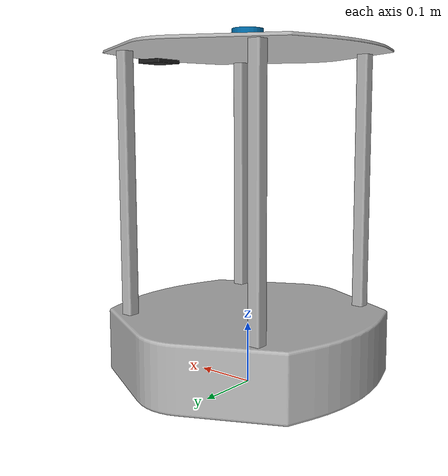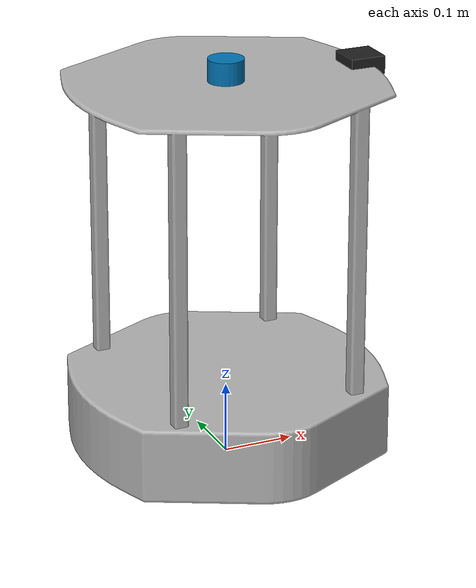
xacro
<?xml version="1.0" ?>
<robot name="ancro" xmlns:xacro="http://www.ros.org/wiki/xacro">

<xacro:include filename="$(find ancro_description)/urdf/materials.xacro" />
<xacro:include filename="$(find ancro_description)/urdf/ancro.trans" />
<xacro:include filename="$(find ancro_description)/urdf/ancro.gazebo.xacro" />

<link name="base_footprint"/>

<joint name="base_joint" type="fixed">
    <parent link="base_footprint"/>
    <child link="base_link"/>
    <origin xyz="0.0 0.0 0.010" rpy="0 0 -1.57"/>
  </joint>

<link name="base_link">
  <inertial>
    <origin rpy="0 0 0" xyz="2.360311031961313e-06 3.348856490864264e-10 0.1823972044211784"/>
    <mass value="10.987205181570816"/>
    <inertia ixx="0.580104" ixy="3e-05" ixz="4e-06" iyy="0.584543" iyz="0.0" izz="0.309516"/>
  </inertial>
  <visual>
    <origin rpy="0 0 0" xyz="0 0 0"/>
    <geometry>
      <mesh filename="package://ancro_description/meshes/base_link.stl" scale="0.001 0.001 0.001"/>
    </geometry>
    <material name="silver"/>
  </visual>
  <collision>
    <origin rpy="0 0 0" xyz="0 0 0"/>
    <geometry>
      <mesh filename="package://ancro_description/meshes/base_link.stl" scale="0.001 0.001 0.001"/>
    </geometry>
  </collision>
</link>

<link name="right_wheel_1">
  <inertial>
    <origin rpy="0 0 0" xyz="0.00611814035603947 -3.5827692354705325e-18 -1.3642559304472002e-13"/>
    <mass value="0.22634609582436735"/>
    <inertia ixx="0.000272" ixy="-0.0" ixz="0.0" iyy="0.000152" iyz="-0.0" izz="0.000152"/>
  </inertial>
  <visual>
    <origin rpy="0 0 0" xyz="-0.17 -0.0 -0.05"/>
    <geometry>
      <mesh filename="package://ancro_description/meshes/right_wheel_1.stl" scale="0.001 0.001 0.001"/>
    </geometry>
    <material name="silver"/>
  </visual>
  <collision>
    <origin rpy="0 0 0" xyz="-0.17 -0.0 -0.05"/>
    <geometry>
      <mesh filename="package://ancro_description/meshes/right_wheel_1.stl" scale="0.001 0.001 0.001"/>
    </geometry>
  </collision>
</link>

<link name="left_wheel_1">
  <inertial>
    <origin rpy="0 0 0" xyz="-0.006118140356039359 3.5827692354705325e-18 -1.3665457654354896e-13"/>
    <mass value="0.22634609582436735"/>
    <inertia ixx="0.000272" ixy="-0.0" ixz="-0.0" iyy="0.000152" iyz="-0.0" izz="0.000152"/>
  </inertial>
  <visual>
    <origin rpy="0 0 0" xyz="0.17 -0.0 -0.05"/>
    <geometry>
      <mesh filename="package://ancro_description/meshes/left_wheel_1.stl" scale="0.001 0.001 0.001"/>
    </geometry>
    <material name="silver"/>
  </visual>
  <collision>
    <origin rpy="0 0 0" xyz="0.17 -0.0 -0.05"/>
    <geometry>
      <mesh filename="package://ancro_description/meshes/left_wheel_1.stl" scale="0.001 0.001 0.001"/>
    </geometry>
  </collision>
</link>

<link name="lidar_1">
    <visual>
      <origin xyz="0 0 0.0" rpy="0 0 0"/>
      <geometry>
        <cylinder length="0.0315" radius="0.025"/>
      </geometry>
    </visual>

    <collision>
      <origin xyz="0.015 0 -0.0065" rpy="0 0 0"/>
      <geometry>
        <cylinder length="0.03" radius="0.025"/>
      </geometry>
    </collision>

    <inertial>
      <mass value="0.114" />
      <origin xyz="0 0 0" />
      <inertia ixx="0.001" ixy="0.0" ixz="0.0"
               iyy="0.001" iyz="0.0"
               izz="0.001" />
    </inertial>
  </link>

<link name="camera">
  <inertial>
    <origin xyz="0.0 0.0 0.0" rpy="0.0 0.0 0.0"/>
    <mass value="0.0"/>
    <inertia ixx="0.0" ixy="0.0" ixz="0.0" iyy="0.0" iyz="0.0" izz="0.0"/>
  </inertial>
  <visual name="">
    <origin xyz="0.0 0.0 0.0" rpy="0.0 0.0 0.0"/>
    <geometry>
      <box size="0.05 0.05 0.025"/>
    </geometry>
  </visual>
  <collision>
    <origin xyz="0.0 0.0 0.0" rpy="0.0 0.0 0.0"/>
    <geometry>
      <box size="0.0 0.0 0.0"/>
    </geometry>
  </collision>
</link>
<joint name="camera_joint" type="fixed">
  <origin xyz="0 0.2 0.535" rpy="0 0 0"/>
  <parent link="base_link"/>
  <child link="camera"/>
</joint>

<joint name="Rev1" type="continuous">
  <origin rpy="0 0 0" xyz="0.17 0.0 0.05"/>
  <parent link="base_link"/>
  <child link="right_wheel_1"/>
  <axis xyz="-1.0 0.0 0.0"/>
  <limit effort="100" velocity="100"/>
  <joint_properties damping="20.0" friction="0.8"/>
</joint>

<joint name="Rev2" type="continuous">
  <origin rpy="0 0 0" xyz="-0.17 0.0 0.05"/>
  <parent link="base_link"/>
  <child link="left_wheel_1"/>
  <axis xyz="-1.0 0.0 0.0"/>
  <limit effort="100" velocity="100"/>
  <joint_properties damping="20.0" friction="0.8"/>
</joint>

<joint name="Rigid4" type="fixed">
  <origin rpy="0 0 0" xyz="0.0 0.0 0.550"/>
  <parent link="base_link"/>
  <child link="lidar_1"/>
</joint>

</robot>

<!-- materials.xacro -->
<robot name="ancro" xmlns:xacro="http://www.ros.org/wiki/xacro" >

<material name="silver">
  <color rgba="0.700 0.700 0.700 1.000"/>
</material>

</robot>

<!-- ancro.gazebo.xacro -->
<robot name="ancro" xmlns:xacro="http://www.ros.org/wiki/xacro" >

<xacro:property name="body_color" value="Gazebo/Silver" />
<xacro:property name="body_color2" value="Gazebo/Black" />

<gazebo>
    <plugin name="differential_drive_controller" filename="libgazebo_ros_diff_drive.so">
      <commandTopic>cmd_vel</commandTopic>
      <odometryTopic>odom</odometryTopic>
      <odometryFrame>odom</odometryFrame>
      <odometrySource>world</odometrySource>
      <publishOdomTF>true</publishOdomTF>
      <robotBaseFrame>dummy</robotBaseFrame>
      <publishWheelTF>false</publishWheelTF>
      <publishTf>true</publishTf>
      <publishWheelJointState>true</publishWheelJointState>
      <legacyMode>false</legacyMode>
      <legacyModeNS>true</legacyModeNS>
      <updateRate>30</updateRate>
      <leftJoint>Rev2</leftJoint>
      <rightJoint>Rev1</rightJoint>
      <wheelSeparation>0.28</wheelSeparation>
      <wheelDiameter>0.1</wheelDiameter>
      <wheelAcceleration>1</wheelAcceleration>
      <wheelTorque>10</wheelTorque>
      <rosDebugLevel>na</rosDebugLevel>
    </plugin>
  </gazebo>

<gazebo reference="base_link">
  <material>${body_color}</material>
  <mu1>0.1</mu1>
  <mu2>0.1</mu2>
  <selfCollide>true</selfCollide>
  <gravity>true</gravity>
</gazebo>

<gazebo reference="right_wheel_1">
  <material>${body_color2}</material>
  <mu1>500</mu1>
  <mu2>500</mu2>
  <selfCollide>true</selfCollide>
</gazebo>

<gazebo reference="left_wheel_1">
  <material>${body_color2}</material>
  <mu1>500</mu1>
  <mu2>500</mu2>
  <selfCollide>true</selfCollide>
</gazebo>
<gazebo reference="camera">
  <material>${body_color2}</material>
  <mu1>0.1</mu1>
  <mu2>0.1</mu2>

</gazebo>

<gazebo reference="laser">
    <material>${body_color2}</material>
    <sensor type="ray" name="lds_lfcd_sensor">
      <pose>0 0 0 0 0 0</pose>
      <visualize>false</visualize>
      <update_rate>20</update_rate>
      <ray>
        <scan>
          <horizontal>
            <samples>360</samples>
            <resolution>1</resolution> -->
            <min_angle>0.0</min_angle>
            <max_angle>6.28319</max_angle>
          </horizontal>
        </scan>
        <range>
          <min>0.120</min>
          <max>5</max>
          <resolution>0.015</resolution>
        </range>
        <noise>
          <type>gaussian</type>
          <mean>0.0</mean>
          <stddev>0.01</stddev>
        </noise>
      </ray>
      <plugin name="gazebo_ros_lds_lfcd_controller" filename="libgazebo_ros_laser.so">
        <topicName>scan</topicName>
        <frameName>laser</frameName>
      </plugin>
    </sensor>
  </gazebo>

  <gazebo reference="camera">

    <sensor type="camera" name="camera1">
      <update_rate>30.0</update_rate>
      <camera name="head">
        <horizontal_fov>1.3962634</horizontal_fov>
        <image>
          <width>800</width>
          <height>800</height>
          <format>R8G8B8</format>
        </image>
        <clip>
          <near>0.02</near>
          <far>300</far>
        </clip>
      </camera>
      <plugin name="camera_controller" filename="libgazebo_ros_camera.so">
        <alwaysOn>true</alwaysOn>
        <updateRate>0.0</updateRate>
        <cameraName>botcam</cameraName>
        <imageTopicName>image_raw</imageTopicName>
        <cameraInfoTopicName>camera_info</cameraInfoTopicName>
        <frameName>camera</frameName>
        <hackBaseline>0.07</hackBaseline>
        <distortionK1>0.0</distortionK1>
        <distortionK2>0.0</distortionK2>
        <distortionK3>0.0</distortionK3>
        <distortionT1>0.0</distortionT1>
        <distortionT2>0.0</distortionT2>
      </plugin>
    </sensor>
  </gazebo>

</robot>
